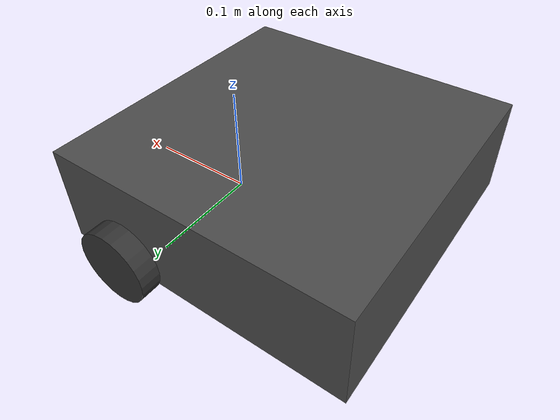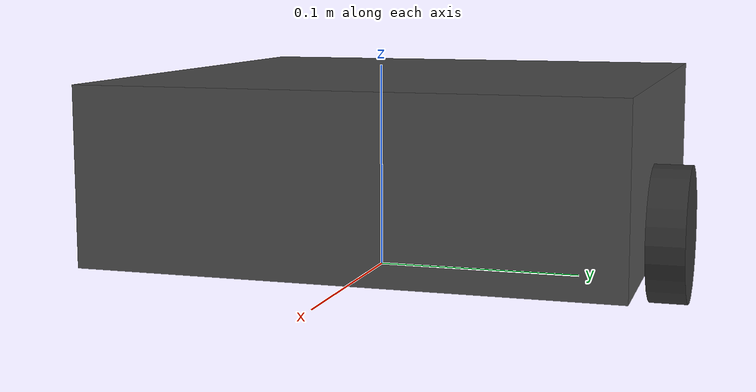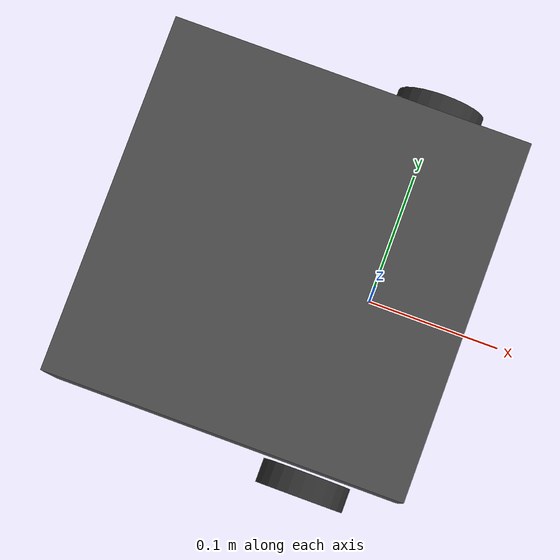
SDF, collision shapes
<?xml version="1.0" ?>
<sdf version="1.5">
  <model name="turtlebot3_waffle">
  <pose>0.0 0.0 0.0 0.0 0.0 0.0</pose>

    <link name="base_footprint"/>

    <link name="base_link">

      <inertial>
        <pose>-0.064 0 0.048 0 0 0</pose>
        <inertia>
          <ixx>4.2111447e-02</ixx>
          <ixy>0</ixy>
          <ixz>0</ixz>
          <iyy>4.2111447e-02</iyy>
          <iyz>0</iyz>
          <izz>7.5254874e-02</izz>
        </inertia>
        <mass>1.3729096e+00</mass>
      </inertial>

      <collision name="base_collision">
        <pose>-0.064 0 0.048 0 0 0</pose>
        <geometry>
          <box>
            <size>0.265 0.265 0.089</size>
          </box>
        </geometry>
      </collision>

      <visual name="base_visual">
        <pose>-0.064 0 0 0 0 0</pose>
        <geometry>
          <mesh>
            <uri>model://turtlebot3_common/meshes/bases/waffle_base.stl</uri>
            <scale>0.001 0.001 0.001</scale>
          </mesh>
        </geometry>
        <material>
          <ambient>0.3 0.3 0.3 1.0</ambient>
          <diffuse>0.3 0.3 0.3 1.0</diffuse>
        </material>
      </visual>
    </link>

    <link name="imu_link">
      <sensor name="tb3_imu" type="imu">
        <always_on>true</always_on>
        <update_rate>200</update_rate>
        <imu>
          <angular_velocity>
            <x>
              <noise type="gaussian">
                <mean>0.0</mean>
                <stddev>2e-4</stddev>
              </noise>
            </x>
            <y>
              <noise type="gaussian">
                <mean>0.0</mean>
                <stddev>2e-4</stddev>
              </noise>
            </y>
            <z>
              <noise type="gaussian">
                <mean>0.0</mean>
                <stddev>2e-4</stddev>
              </noise>
            </z>
          </angular_velocity>
          <linear_acceleration>
            <x>
              <noise type="gaussian">
                <mean>0.0</mean>
                <stddev>1.7e-2</stddev>
              </noise>
            </x>
            <y>
              <noise type="gaussian">
                <mean>0.0</mean>
                <stddev>1.7e-2</stddev>
              </noise>
            </y>
            <z>
              <noise type="gaussian">
                <mean>0.0</mean>
                <stddev>1.7e-2</stddev>
              </noise>
            </z>
          </linear_acceleration>
        </imu>
        <plugin name="turtlebot3_imu" filename="libgazebo_ros_imu_sensor.so">
          <ros>
            <remapping>~/out:=imu</remapping>
          </ros>
        </plugin>
      </sensor>
    </link>

    <link name="base_scan">
      <inertial>
        <pose>-0.052 0 0.111 0 0 0</pose>
        <inertia>
          <ixx>0.001</ixx>
          <ixy>0.000</ixy>
          <ixz>0.000</ixz>
          <iyy>0.001</iyy>
          <iyz>0.000</iyz>
          <izz>0.001</izz>
        </inertia>
        <mass>0.114</mass>
      </inertial>
    </link>

    <link name="wheel_left_link">

      <inertial>
        <pose>0.0 0.144 0.023 -1.57 0 0</pose>
        <inertia>
          <ixx>1.1175580e-05</ixx>
          <ixy>-4.2369783e-11</ixy>
          <ixz>-5.9381719e-09</ixz>
          <iyy>1.1192413e-05</iyy>
          <iyz>-1.4400107e-11</iyz>
          <izz>2.0712558e-05</izz>
        </inertia>
        <mass>0.1</mass>
      </inertial>

      <collision name="wheel_left_collision">
        <pose>0.0 0.144 0.023 -1.57 0 0</pose>
        <geometry>
          <cylinder>
            <radius>0.033</radius>
            <length>0.018</length>
          </cylinder>
        </geometry>
        <surface>
          <!-- This friction pamareter don't contain reliable data!! -->
          <friction>
            <ode>
              <mu>100000.0</mu>
              <mu2>100000.0</mu2>
              <fdir1>0 0 0</fdir1>
              <slip1>0.0</slip1>
              <slip2>0.0</slip2>
            </ode>
          </friction>
          <contact>
            <ode>
              <soft_cfm>0</soft_cfm>
              <soft_erp>0.2</soft_erp>
              <kp>1e+5</kp>
              <kd>1</kd>
              <max_vel>0.01</max_vel>
              <min_depth>0.001</min_depth>
            </ode>
          </contact>
        </surface>
      </collision>

      <visual name="wheel_left_visual">
        <pose>0.0 0.144 0.023 0 0 0</pose>
        <geometry>
          <mesh>
            <uri>model://turtlebot3_common/meshes/wheels/right_tire.stl</uri>
            <scale>0.001 0.001 0.001</scale>
          </mesh>
        </geometry>
        <material>
          <ambient>0.2 0.2 0.2 1.0</ambient>
          <diffuse>0.2 0.2 0.2 1.0</diffuse>
        </material>
      </visual>
    </link>

    <link name="wheel_right_link">

      <inertial>
        <pose>0.0 -0.144 0.023 -1.57 0 0</pose>
        <inertia>
          <ixx>1.1175580e-05</ixx>
          <ixy>-4.2369783e-11</ixy>
          <ixz>-5.9381719e-09</ixz>
          <iyy>1.1192413e-05</iyy>
          <iyz>-1.4400107e-11</iyz>
          <izz>2.0712558e-05</izz>
        </inertia>
        <mass>0.1</mass>
      </inertial>

      <collision name="wheel_right_collision">
        <pose>0.0 -0.144 0.023 -1.57 0 0</pose>
        <geometry>
          <cylinder>
            <radius>0.033</radius>
            <length>0.018</length>
          </cylinder>
        </geometry>
        <surface>
          <!-- This friction pamareter don't contain reliable data!! -->
          <friction>
            <ode>
              <mu>100000.0</mu>
              <mu2>100000.0</mu2>
              <fdir1>0 0 0</fdir1>
              <slip1>0.0</slip1>
              <slip2>0.0</slip2>
            </ode>
          </friction>
          <contact>
            <ode>
              <soft_cfm>0</soft_cfm>
              <soft_erp>0.2</soft_erp>
              <kp>1e+5</kp>
              <kd>1</kd>
              <max_vel>0.01</max_vel>
              <min_depth>0.001</min_depth>
            </ode>
          </contact>
        </surface>
      </collision>

      <visual name="wheel_right_visual">
        <pose>0.0 -0.144 0.023 0 0 0</pose>
        <geometry>
          <mesh>
            <uri>model://turtlebot3_common/meshes/wheels/left_tire.stl</uri>
            <scale>0.001 0.001 0.001</scale>
          </mesh>
        </geometry>
        <material>
          <ambient>0.2 0.2 0.2 1.0</ambient>
          <diffuse>0.2 0.2 0.2 1.0</diffuse>
        </material>
      </visual>
    </link>

    <link name='caster_back_right_link'>
      <pose>-0.177 -0.064 -0.004 -1.57 0 0</pose>
      <inertial>
        <mass>0.001</mass>
        <inertia>
          <ixx>0.00001</ixx>
          <ixy>0.000</ixy>
          <ixz>0.000</ixz>
          <iyy>0.00001</iyy>
          <iyz>0.000</iyz>
          <izz>0.00001</izz>
        </inertia>
      </inertial>
      <collision name='collision'>
        <geometry>
          <sphere>
            <radius>0.005000</radius>
          </sphere>
        </geometry>
        <surface>
          <contact>
            <ode>
              <soft_cfm>0</soft_cfm>
              <soft_erp>0.2</soft_erp>
              <kp>1e+5</kp>
              <kd>1</kd>
              <max_vel>0.01</max_vel>
              <min_depth>0.001</min_depth>
            </ode>
          </contact>
        </surface>
      </collision>
    </link>

    <link name='caster_back_left_link'>
      <pose>-0.177 0.064 -0.004 -1.57 0 0</pose>
      <inertial>
        <mass>0.001</mass>
        <inertia>
          <ixx>0.00001</ixx>
          <ixy>0.000</ixy>
          <ixz>0.000</ixz>
          <iyy>0.00001</iyy>
          <iyz>0.000</iyz>
          <izz>0.00001</izz>
        </inertia>
      </inertial>
      <collision name='collision'>
        <geometry>
          <sphere>
            <radius>0.005000</radius>
          </sphere>
        </geometry>
        <surface>
          <contact>
            <ode>
              <soft_cfm>0</soft_cfm>
              <soft_erp>0.2</soft_erp>
              <kp>1e+5</kp>
              <kd>1</kd>
              <max_vel>0.01</max_vel>
              <min_depth>0.001</min_depth>
            </ode>
          </contact>
        </surface>
      </collision>
    </link>

    <link name="camera_link"/>

    <link name="camera_rgb_frame">
      <inertial>
        <pose>0.069 -0.047 0.107 0 0 0</pose>
        <inertia>
          <ixx>0.001</ixx>
          <ixy>0.000</ixy>
          <ixz>0.000</ixz>
          <iyy>0.001</iyy>
          <iyz>0.000</iyz>
          <izz>0.001</izz>
        </inertia>
        <mass>0.035</mass>
      </inertial>

      <pose>0.069 -0.047 0.107 0 0 0</pose>
      <sensor name="realsense_d435_depth" type="depth">
        <always_on>true</always_on>
        <visualize>false</visualize>
        <update_rate>30</update_rate>
        <camera name="realsense_d435">
          <horizontal_fov>1.047</horizontal_fov>
          <image>
            <width>640</width>
            <height>480</height>
            <format>B8G8R8</format>
          </image>
          <depth_camera/>
          <clip>
            <near>0.12</near>
            <far>3.5</far>
          </clip>
          <noise>
            <type>gaussian</type>
            <mean>0.0</mean>
            <stddev>0.007</stddev>
          </noise>
        </camera>
        <plugin name="realsense_d435_controller" filename="libgazebo_ros_camera.so">
          <ros>
            <remapping>camera/image_raw:=/camera/color/image_raw</remapping>
            <remapping>camera/camera_info:=/camera/color/camera_info</remapping>
            <remapping>camera/depth/image_raw:=/camera/depth/image_raw</remapping>
            <remapping>camera/depth/camera_info:=/camera/depth/camera_info</remapping>
            <remapping>camera/points:=/camera/depth/points</remapping>
          </ros>
          <camera_name>camera</camera_name>
          <frame_name>camera_depth_optical_frame</frame_name>
          <min_depth>0.12</min_depth>
          <max_depth>3.5</max_depth>
        </plugin>
      </sensor>
    </link>

    <joint name="base_joint" type="fixed">
      <parent>base_footprint</parent>
      <child>base_link</child>
      <pose>0.0 0.0 0.010 0 0 0</pose>
    </joint>

    <joint name="wheel_left_joint" type="revolute">
      <parent>base_link</parent>
      <child>wheel_left_link</child>
      <pose>0.0 0.144 0.023 -1.57 0 0</pose>
      <axis>
        <xyz>0 0 1</xyz>
      </axis>
    </joint>

    <joint name="wheel_right_joint" type="revolute">
      <parent>base_link</parent>
      <child>wheel_right_link</child>
      <pose>0.0 -0.144 0.023 -1.57 0 0</pose>
      <axis>
        <xyz>0 0 1</xyz>
      </axis>
    </joint>

    <joint name='caster_back_right_joint' type='ball'>
      <parent>base_link</parent>
      <child>caster_back_right_link</child>
    </joint>

    <joint name='caster_back_left_joint' type='ball'>
      <parent>base_link</parent>
      <child>caster_back_left_link</child>
    </joint>

    <joint name="imu_joint" type="fixed">
      <parent>base_link</parent>
      <child>imu_link</child>
      <pose>-0.032 0 0.068 0 0 0</pose>
      <axis>
        <xyz>0 0 1</xyz>
      </axis>
    </joint>

    <joint name="lidar_joint" type="fixed">
      <parent>base_link</parent>
      <child>base_scan</child>
      <pose>-0.064 0 0.121 0 0 0</pose>
      <axis>
        <xyz>0 0 1</xyz>
      </axis>
    </joint>

    <joint name="camera_joint" type="fixed">
      <parent>base_link</parent>
      <child>camera_link</child>
      <pose>0.064 -0.065 0.094 0 0 0</pose>
      <axis>
        <xyz>0 0 1</xyz>
      </axis>
    </joint>

    <joint name="camera_rgb_joint" type="fixed">
      <parent>camera_link</parent>
      <child>camera_rgb_frame</child>
      <pose>0.005 0.018 0.013 0 0 0</pose>
      <axis>
        <xyz>0 0 1</xyz>
      </axis>
    </joint>

    <plugin name="turtlebot3_diff_drive" filename="libgazebo_ros_diff_drive.so">

      <ros>
      </ros>

      <update_rate>30</update_rate>

      <!-- wheels -->
      <left_joint>wheel_left_joint</left_joint>
      <right_joint>wheel_right_joint</right_joint>

      <!-- kinematics -->
      <wheel_separation>0.287</wheel_separation>
      <wheel_diameter>0.066</wheel_diameter>

      <!-- limits -->
      <max_wheel_torque>20</max_wheel_torque>
      <max_wheel_acceleration>1.0</max_wheel_acceleration>

      <command_topic>cmd_vel</command_topic>

      <!-- output -->
      <publish_odom>true</publish_odom>
      <publish_odom_tf>true</publish_odom_tf>
      <publish_wheel_tf>false</publish_wheel_tf>

      <odometry_topic>odom</odometry_topic>
      <odometry_frame>odom</odometry_frame>
      <robot_base_frame>base_footprint</robot_base_frame>

    </plugin>

    <plugin name="turtlebot3_joint_state" filename="libgazebo_ros_joint_state_publisher.so">
      <ros>
        <remapping>~/out:=joint_states</remapping>
      </ros>
      <update_rate>30</update_rate>
      <joint_name>wheel_left_joint</joint_name>
      <joint_name>wheel_right_joint</joint_name>
    </plugin>

  </model>
</sdf>
